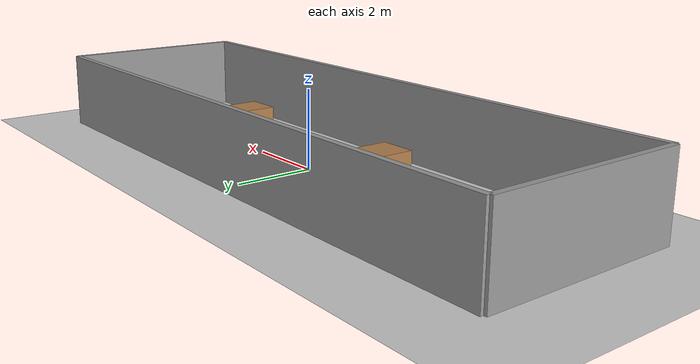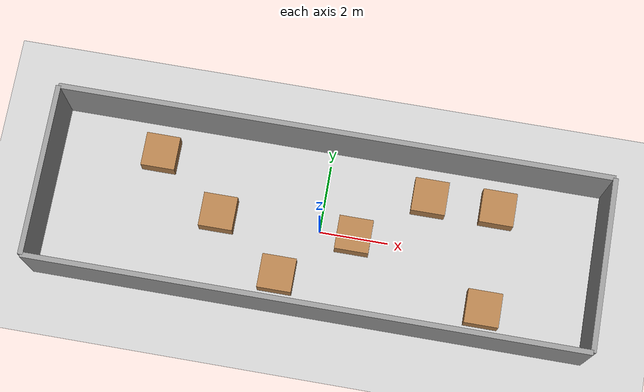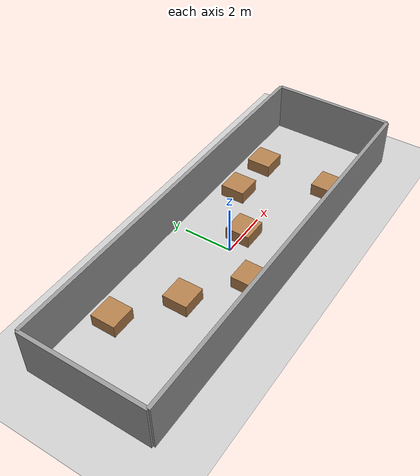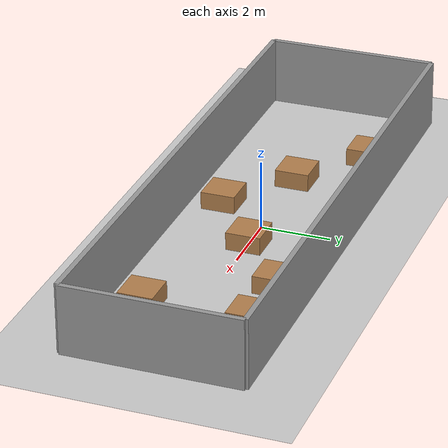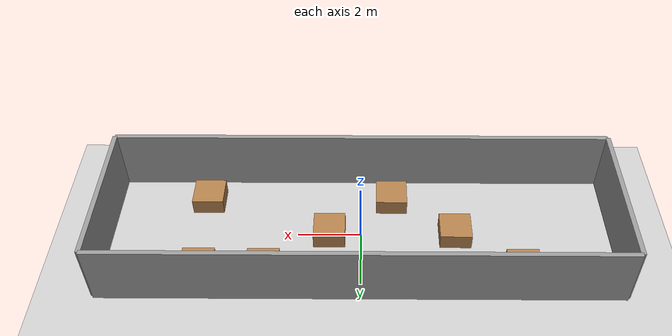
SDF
<?xml version='1.0'?>
<sdf version='1.6'>
  <world name='default'>

    <!-- Camera Pose -->
    <gui fullscreen='0'>
      <camera name='user_camera'>
        <pose frame=''>-15 0 15 0 0.785398 -0</pose>
      </camera>
    </gui>

    <!-- sun -->
    <include>
      <uri>model://sun</uri>
    </include>

    <!-- Ground Plane -->
    <include>
      <uri>model://ground_plane</uri>
    </include>

    <!-- simple_room -->
    <include>
      <uri>model://simple_room</uri>
      <pose>0 0 1 0 0 0</pose>
    </include>

    <!-- box 1 -->
    <include>
      <name>box_1</name>
      <uri>model://box</uri>
      <pose>-5 1.5 0 0 -0 1.5707</pose>
    </include>

    <!-- box 2 -->
    <include>
      <name>box_2</name>
      <uri>model://box</uri>
      <pose>-3 0 0 0 -0 1.5707</pose>
    </include>

    <!-- box 3 -->
    <include>
      <name>box_3</name>
      <uri>model://box</uri>
      <pose>-1 -1.5 0 0 -0 1.5707</pose>
    </include>

    <!-- box 4 -->
    <include>
      <name>box_4</name>
      <uri>model://box</uri>
      <pose>1 0 0 0 -0 1.5707</pose>
    </include>

    <!-- box 5 -->
    <include>
      <name>box_5</name>
      <uri>model://box</uri>
      <pose>3 1.5 0 0 -0 1.5707</pose>
    </include>

    <!-- box 6 -->
    <include>
      <name>box_6</name>
      <uri>model://box</uri>
      <pose>5 1.5 0 0 -0 1.5707</pose>
    </include>

    <!-- box 7 -->
    <include>
      <name>box_7</name>
      <uri>model://box</uri>
      <pose>5 -1.5 0 0 -0 1.5707</pose>
    </include>

  </world>
</sdf>

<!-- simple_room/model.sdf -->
<sdf version='1.6'>

  <model name='simple_room'>
    <pose frame=''>3.925 -0.715 0 0 -0 0</pose>

    <link name='Wall_0'>
      <pose frame=''>0 -2.5 0 0 -0 0</pose>
      <collision name='Wall_0_Collision'>
        <geometry>
          <box>
            <size>16 0.15 2.0</size>
          </box>
        </geometry>
        <max_contacts>10</max_contacts>
        <surface>
          <contact>
            <ode/>
          </contact>
          <bounce/>
          <friction>
            <torsional>
              <ode/>
            </torsional>
            <ode/>
          </friction>
        </surface>
      </collision>
      <visual name='Wall_0_Visual'>
        <geometry>
          <box>
            <size>16 0.15 2.0</size>
          </box>
        </geometry>
        <material>
          <script>
            <uri>file://media/materials/scripts/gazebo.material</uri>
            <name>Gazebo/Grey</name>
          </script>
          <ambient>1 1 1 1</ambient>
        </material>
        <meta>
          <layer>0</layer>
        </meta>
      </visual>
      <self_collide>0</self_collide>
      <enable_wind>0</enable_wind>
      <kinematic>0</kinematic>
    </link>

    <link name='Wall_1'>
      <pose frame=''>8 -0 0 0 -0 1.5708</pose>
      <collision name='Wall_1_Collision'>
        <geometry>
          <box>
            <size>5 0.15 2.0</size>
          </box>
        </geometry>
        <max_contacts>10</max_contacts>
        <surface>
          <contact>
            <ode/>
          </contact>
          <bounce/>
          <friction>
            <torsional>
              <ode/>
            </torsional>
            <ode/>
          </friction>
        </surface>
      </collision>
      <visual name='Wall_1_Visual'>
        <geometry>
          <box>
            <size>5 0.15 2.0</size>
          </box>
        </geometry>
        <material>
          <script>
            <uri>file://media/materials/scripts/gazebo.material</uri>
            <name>Gazebo/Grey</name>
          </script>
          <ambient>1 1 1 1</ambient>
        </material>
        <meta>
          <layer>0</layer>
        </meta>
      </visual>
      <self_collide>0</self_collide>
      <enable_wind>0</enable_wind>
      <kinematic>0</kinematic>
    </link>

    <link name='Wall_2'>
      <pose frame=''>0 2.5 0 0 0 3.14159</pose>
      <collision name='Wall_2_Collision'>
        <geometry>
          <box>
            <size>16 0.15 2.0</size>
          </box>
        </geometry>
        <max_contacts>10</max_contacts>
        <surface>
          <contact>
            <ode/>
          </contact>
          <bounce/>
          <friction>
            <torsional>
              <ode/>
            </torsional>
            <ode/>
          </friction>
        </surface>
      </collision>
      <visual name='Wall_2_Visual'>
        <geometry>
          <box>
            <size>16 0.15 2.0</size>
          </box>
        </geometry>
        <material>
          <script>
            <uri>file://media/materials/scripts/gazebo.material</uri>
            <name>Gazebo/Grey</name>
          </script>
          <ambient>1 1 1 1</ambient>
        </material>
        <meta>
          <layer>0</layer>
        </meta>
      </visual>
      <self_collide>0</self_collide>
      <enable_wind>0</enable_wind>
      <kinematic>0</kinematic>
    </link>

    <link name='Wall_3'>
      <pose frame=''>-8 0 0 0 -0 -1.5708</pose>
      <collision name='Wall_3_Collision'>
        <geometry>
          <box>
            <size>5 0.15 2.0</size>
          </box>
        </geometry>
        <max_contacts>10</max_contacts>
        <surface>
          <contact>
            <ode/>
          </contact>
          <bounce/>
          <friction>
            <torsional>
              <ode/>
            </torsional>
            <ode/>
          </friction>
        </surface>
      </collision>
      <visual name='Wall_3_Visual'>
        <geometry>
          <box>
            <size>5 0.15 2.0</size>
          </box>
        </geometry>
        <material>
          <script>
            <uri>file://media/materials/scripts/gazebo.material</uri>
            <name>Gazebo/Grey</name>
          </script>
          <ambient>1 1 1 1</ambient>
        </material>
        <meta>
          <layer>0</layer>
        </meta>
      </visual>
      <self_collide>0</self_collide>
      <enable_wind>0</enable_wind>
      <kinematic>0</kinematic>
    </link>
    <static>1</static>
  </model>
</sdf>

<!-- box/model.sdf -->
<sdf version='1.6'>

  <model name='box'>
    <pose>0 0 0 0 0 0</pose>
    <link name='link'>
      <inertial>
        <mass>1</mass>
        <inertia>
          <ixx>0.166667</ixx>
          <ixy>0</ixy>
          <ixz>0</ixz>
          <iyy>0.166667</iyy>
          <iyz>0</iyz>
          <izz>0.166667</izz>
        </inertia>
      </inertial>
      <collision name='collision'>
        <geometry>
          <box>
            <size>1 1 1</size>
          </box>
        </geometry>
        <max_contacts>10</max_contacts>
        <surface>
          <contact>
            <ode/>
          </contact>
          <bounce/>
          <friction>
            <torsional>
              <ode/>
            </torsional>
            <ode/>
          </friction>
        </surface>
      </collision>
      <visual name='visual'>
        <geometry>
          <box>
            <size>1 1 1</size>
          </box>
        </geometry>
        <material>
          <script>
            <uri>file://media/materials/scripts/gazebo.material</uri>
            <name>Gazebo/Wood</name>
          </script>
        </material>
      </visual>
      <self_collide>0</self_collide>
      <enable_wind>0</enable_wind>
      <kinematic>0</kinematic>
    </link>
  </model>

</sdf>
